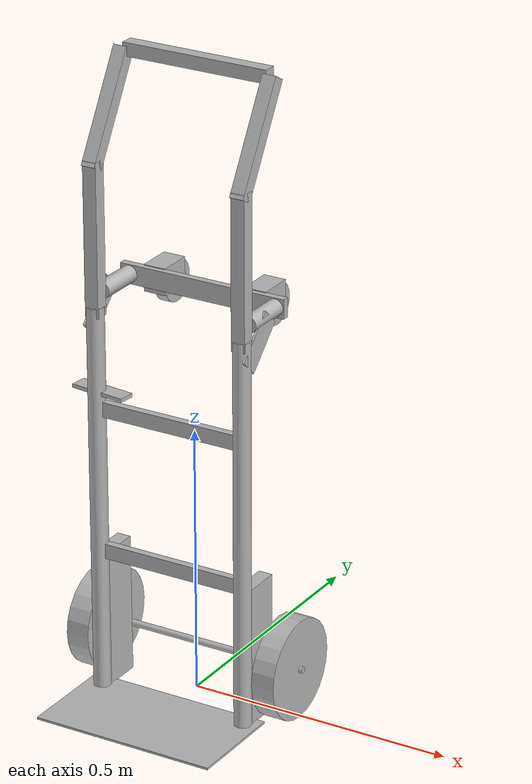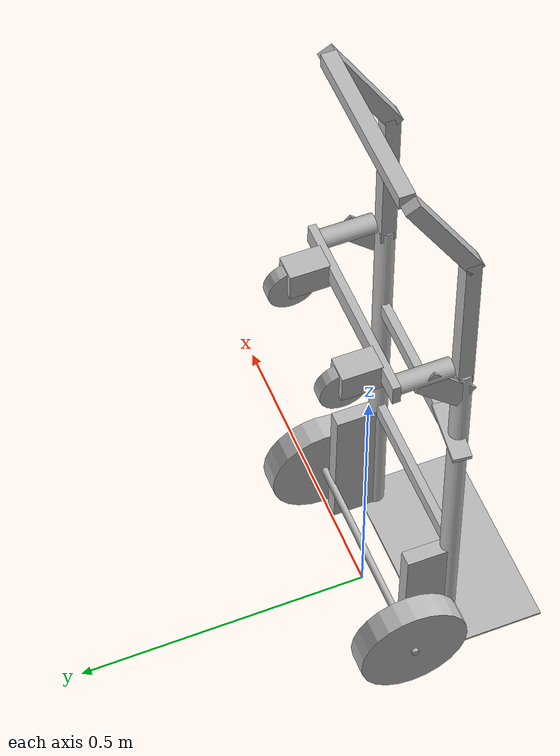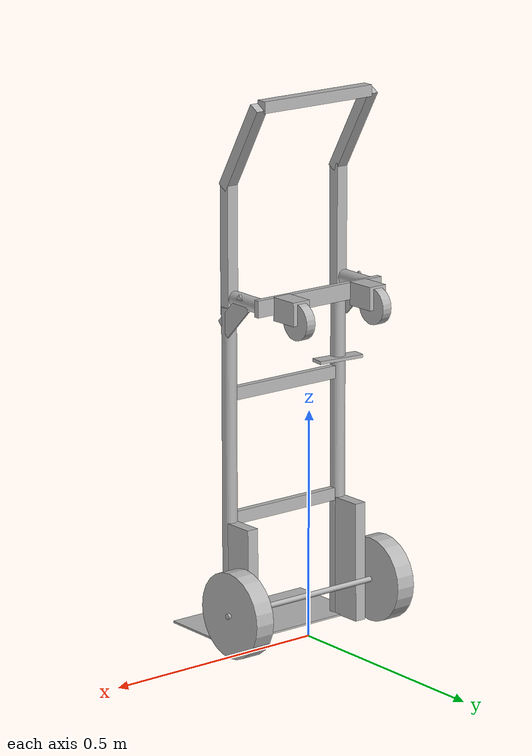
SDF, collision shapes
<?xml version="1.0" ?>
<sdf version="1.6">
  <model name="Handtruck_01">
    <link name="base_link">
      <visual name="base_visual">
        <geometry>
          <mesh>
            <uri>base_visual.glb</uri>
          </mesh>
        </geometry>
      </visual>
      <collision name="sm_handtruck063_collider_box">
        <pose>-0.001147 -0.151735 0.001988 -0.0 -0.0 -1.570796</pose>
        <geometry>
          <box>
            <size>0.19 0.35 0.004044</size>
          </box>
        </geometry>
      </collision>
      <collision name="sm_handtruck063_collider_cylinder">
        <pose>0.145714 -0.083332 0.366952 3.141593 0.0 0.0</pose>
        <geometry>
          <cylinder>
            <radius>0.016</radius>
            <length>0.73</length>
          </cylinder>
        </geometry>
      </collision>
      <collision name="sm_handtruck063_collider_cylinder.001">
        <pose>-0.145714 -0.083332 0.366952 3.141593 0.0 0.0</pose>
        <geometry>
          <cylinder>
            <radius>0.016</radius>
            <length>0.73</length>
          </cylinder>
        </geometry>
      </collision>
      <collision name="sm_handtruck063_collider_cylinder.002">
        <pose>0.145714 -0.013618 0.753275 1.570796 0.0 0.0</pose>
        <geometry>
          <cylinder>
            <radius>0.016</radius>
            <length>0.099753</length>
          </cylinder>
        </geometry>
      </collision>
      <collision name="sm_handtruck063_collider_cylinder.003">
        <pose>-0.145714 -0.013618 0.753275 1.570796 0.0 0.0</pose>
        <geometry>
          <cylinder>
            <radius>0.016</radius>
            <length>0.099753</length>
          </cylinder>
        </geometry>
      </collision>
      <collision name="sm_handtruck063_collider_box.001">
        <pose>0.0 0.030853 0.752903 -1.570796 -3.141593 0.0</pose>
        <geometry>
          <box>
            <size>0.326971 0.036011 0.013351</size>
          </box>
        </geometry>
      </collision>
      <collision name="sm_handtruck063_collider_cylinder.004">
        <pose>0.100944 0.091659 0.729364 1.570796 0.0 1.570796</pose>
        <geometry>
          <cylinder>
            <radius>0.039314</radius>
            <length>0.021759</length>
          </cylinder>
        </geometry>
      </collision>
      <collision name="sm_handtruck063_collider_cylinder.005">
        <pose>-0.100944 0.091659 0.729364 1.570796 0.0 1.570796</pose>
        <geometry>
          <cylinder>
            <radius>0.039314</radius>
            <length>0.021759</length>
          </cylinder>
        </geometry>
      </collision>
      <collision name="sm_handtruck063_collider_box.002">
        <pose>-0.100928 0.067528 0.74754 -3.131055 -0.0 -1e-06</pose>
        <geometry>
          <box>
            <size>0.042673 0.065363 0.050016</size>
          </box>
        </geometry>
      </collision>
      <collision name="sm_handtruck063_collider_box.003">
        <pose>0.100928 0.067528 0.74754 -3.131055 0.0 1e-06</pose>
        <geometry>
          <box>
            <size>0.042673 0.065363 0.050016</size>
          </box>
        </geometry>
      </collision>
      <collision name="sm_handtruck063_collider_box.004">
        <pose>0.0 -0.082128 0.54356 -0.0 1.570796 0.0</pose>
        <geometry>
          <box>
            <size>0.027884 0.013984 0.29874</size>
          </box>
        </geometry>
      </collision>
      <collision name="sm_handtruck063_collider_box.005">
        <pose>-0.139599 -0.075517 0.573295 3.141593 -0.0 -0.111048</pose>
        <geometry>
          <box>
            <size>0.107613 0.030678 0.007069</size>
          </box>
        </geometry>
      </collision>
      <collision name="sm_handtruck063_collider_box.006">
        <pose>0.0 -0.082128 0.272194 -1.570796 1.570796 0.0</pose>
        <geometry>
          <box>
            <size>0.027884 0.29874 0.013984</size>
          </box>
        </geometry>
      </collision>
      <collision name="sm_handtruck063_collider_cylinder.006">
        <pose>0.0 5.8e-05 0.091767 1.570796 0.0 1.570796</pose>
        <geometry>
          <cylinder>
            <radius>0.00605</radius>
            <length>0.437087</length>
          </cylinder>
        </geometry>
      </collision>
      <collision name="sm_handtruck063_collider_cylinder.007">
        <pose>0.190715 6.2e-05 0.091767 1.570796 0.0 1.570796</pose>
        <geometry>
          <cylinder>
            <radius>0.093276</radius>
            <length>0.043851</length>
          </cylinder>
        </geometry>
      </collision>
      <collision name="sm_handtruck063_collider_cylinder.008">
        <pose>-0.190715 6.2e-05 0.091767 1.570796 0.0 1.570796</pose>
        <geometry>
          <cylinder>
            <radius>0.093276</radius>
            <length>0.043851</length>
          </cylinder>
        </geometry>
      </collision>
      <collision name="sm_handtruck063_collider_box.007">
        <pose>0.145654 -0.04045 0.133863 1.560482 -3.14159 -5.2e-05</pose>
        <geometry>
          <box>
            <size>0.026144 0.26372 0.072271</size>
          </box>
        </geometry>
      </collision>
      <collision name="sm_handtruck063_collider_box.008">
        <pose>-0.145654 -0.04045 0.133863 1.560482 3.14159 5.2e-05</pose>
        <geometry>
          <box>
            <size>0.026144 0.26372 0.072271</size>
          </box>
        </geometry>
      </collision>
      <collision name="sm_handtruck063_collider_box.009">
        <pose>0.158544 -0.050081 0.719783 -1.570789 -0.785406 1.570795</pose>
        <geometry>
          <box>
            <size>0.098995 0.043333 0.004184</size>
          </box>
        </geometry>
      </collision>
      <collision name="sm_handtruck063_collider_box.010">
        <pose>-0.158544 -0.050081 0.719783 1.570789 -0.785406 1.570797</pose>
        <geometry>
          <box>
            <size>0.098995 0.043333 0.004184</size>
          </box>
        </geometry>
      </collision>
      <collision name="sm_handtruck063_collider_box.011">
        <pose>0.145129 -0.083142 0.855854 1.570796 0.0 0.0</pose>
        <geometry>
          <box>
            <size>0.026027 0.283282 0.025135</size>
          </box>
        </geometry>
      </collision>
      <collision name="sm_handtruck063_collider_box.012">
        <pose>0.145129 -0.035808 1.075566 1.047197 0.0 0.0</pose>
        <geometry>
          <box>
            <size>0.026027 0.211049 0.025135</size>
          </box>
        </geometry>
      </collision>
      <collision name="sm_handtruck063_collider_box.013">
        <pose>0.0 0.01825 1.167842 1.570796 0.0 0.0</pose>
        <geometry>
          <box>
            <size>0.279602 0.024447 0.024483</size>
          </box>
        </geometry>
      </collision>
      <collision name="sm_handtruck063_collider_box.014">
        <pose>-0.145129 -0.035808 1.075566 1.047197 0.0 0.0</pose>
        <geometry>
          <box>
            <size>0.026027 0.211049 0.025135</size>
          </box>
        </geometry>
      </collision>
      <collision name="sm_handtruck063_collider_box.015">
        <pose>-0.145129 -0.083142 0.855854 1.570796 0.0 0.0</pose>
        <geometry>
          <box>
            <size>0.026027 0.283282 0.025135</size>
          </box>
        </geometry>
      </collision>
    </link>
  </model>
</sdf>
